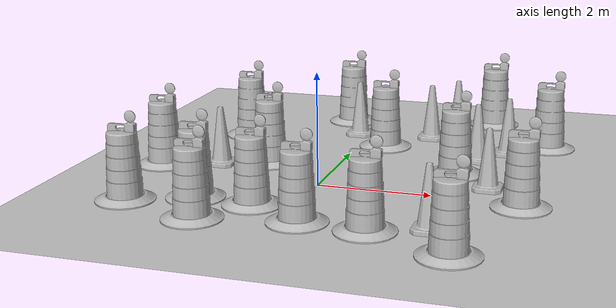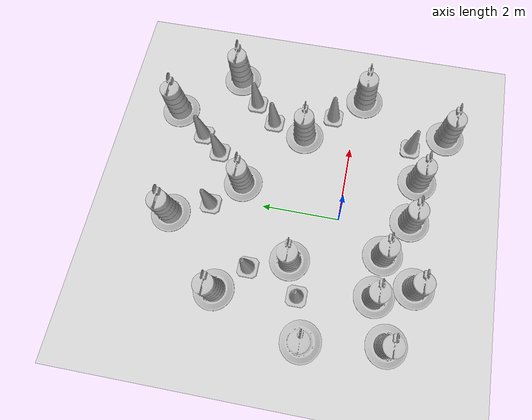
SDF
<sdf version="1.7">
 <world name="default">
  <light name="sun" type="directional">
   <pose>0 0 10 0 -0 0</pose>
   <diffuse>0.8 0.8 0.8 1</diffuse>
   <specular>0.2 0.2 0.2 1</specular>
   <attenuation>
    <range>1000</range>
    <constant>0.9</constant>
    <linear>0.01</linear>
    <quadratic>0.001</quadratic>
   </attenuation>
   <direction>-0.5 0.1 -0.9</direction>
   <spot><inner_angle>0</inner_angle><outer_angle>0</outer_angle><falloff>0</falloff></spot>
  </light>
  <model name="ground_plane">
   <static>1</static>
   <link name="link">
    <collision name="collision">
     <geometry><plane><normal>0 0 1</normal><size>100 100</size></plane></geometry>
     <surface>
      <contact><collide_bitmask>65535</collide_bitmask></contact>
      <friction><ode><mu>100</mu><mu2>50</mu2></ode></friction>
     </surface>
    </collision>
    <visual name="visual">
     <cast_shadows>0</cast_shadows>
     <geometry><plane><normal>0 0 1</normal><size>100 100</size></plane></geometry>
     <material>
      <script><uri>file://media/materials/scripts/gazebo.material</uri><name>Gazebo/Grey</name></script>
     </material>
    </visual>
   </link>
  </model>
  <gravity>0 0 -9.8</gravity>
  <magnetic_field>6e-06 2.3e-05 -4.2e-05</magnetic_field>
  <atmosphere type="adiabatic"/>
  <physics type="ode">
   <max_step_size>0.001</max_step_size>
   <real_time_factor>1</real_time_factor>
   <real_time_update_rate>1000</real_time_update_rate>
  </physics>
  <scene><ambient>0.4 0.4 0.4 1</ambient><background>0.7 0.7 0.7 1</background><shadows>1</shadows></scene>
  <spherical_coordinates>
   <surface_model>EARTH_WGS84</surface_model>
   <latitude_deg>0</latitude_deg>
   <longitude_deg>0</longitude_deg>
   <elevation>0</elevation>
   <heading_deg>0</heading_deg>
  </spherical_coordinates>
  <model name="Construction Barrel">
   <link name="link">
    <inertial>
     <pose>0 0 0.4 0 -0 0</pose>
     <mass>500</mass>
     <inertia><ixx>51.2096</ixx><iyy>51.2096</iyy><izz>25</izz><ixy>0</ixy><ixz>0</ixz><iyz>0</iyz></inertia>
    </inertial>
    <collision name="collision">
     <geometry><mesh><uri>model://construction_barrel/meshes/construction_barrel.dae</uri></mesh></geometry>
    </collision>
    <visual name="visual">
     <geometry><mesh><uri>model://construction_barrel/meshes/construction_barrel.dae</uri></mesh></geometry>
    </visual>
   </link>
   <pose>0.528316 2.64974 -3e-06 -0 -1.2e-05 -4.1e-05</pose>
  </model>
  <model name="Construction Barrel_0">
   <link name="link">
    <inertial>
     <pose>0 0 0.4 0 -0 0</pose>
     <mass>500</mass>
     <inertia><ixx>51.2096</ixx><iyy>51.2096</iyy><izz>25</izz><ixy>0</ixy><ixz>0</ixz><iyz>0</iyz></inertia>
    </inertial>
    <collision name="collision">
     <geometry><mesh><uri>model://construction_barrel/meshes/construction_barrel.dae</uri></mesh></geometry>
    </collision>
    <visual name="visual">
     <geometry><mesh><uri>model://construction_barrel/meshes/construction_barrel.dae</uri></mesh></geometry>
    </visual>
   </link>
   <pose>2.16513 1.29232 0 1e-06 1e-06 -2.8e-05</pose>
  </model>
  <model name="Construction Barrel_1">
   <link name="link">
    <inertial>
     <pose>0 0 0.4 0 -0 0</pose>
     <mass>500</mass>
     <inertia><ixx>51.2096</ixx><iyy>51.2096</iyy><izz>25</izz><ixy>0</ixy><ixz>0</ixz><iyz>0</iyz></inertia>
    </inertial>
    <collision name="collision">
     <geometry><mesh><uri>model://construction_barrel/meshes/construction_barrel.dae</uri></mesh></geometry>
    </collision>
    <visual name="visual">
     <geometry><mesh><uri>model://construction_barrel/meshes/construction_barrel.dae</uri></mesh></geometry>
    </visual>
   </link>
   <pose>-1.41045 -2.10573 -1e-06 3e-06 -2e-06 0.000834</pose>
  </model>
  <model name="Construction Cone">
   <link name="link">
    <collision name="collision">
     <geometry>
      <mesh><scale>10 10 10</scale><uri>model://construction_cone/meshes/construction_cone.dae</uri></mesh>
     </geometry>
    </collision>
    <visual name="visual">
     <geometry>
      <mesh><scale>10 10 10</scale><uri>model://construction_cone/meshes/construction_cone.dae</uri></mesh>
     </geometry>
    </visual>
    <inertial>
     <inertia><ixx>1</ixx><ixy>0</ixy><ixz>0</ixz><iyy>1</iyy><iyz>0</iyz><izz>1</izz></inertia>
     <mass>1</mass>
    </inertial>
   </link>
   <pose>2.42126 2.18894 -0 0 -0 0</pose>
  </model>
  <model name="Construction Cone_0">
   <link name="link">
    <collision name="collision">
     <geometry>
      <mesh><scale>10 10 10</scale><uri>model://construction_cone/meshes/construction_cone.dae</uri></mesh>
     </geometry>
    </collision>
    <visual name="visual">
     <geometry>
      <mesh><scale>10 10 10</scale><uri>model://construction_cone/meshes/construction_cone.dae</uri></mesh>
     </geometry>
    </visual>
    <inertial>
     <inertia><ixx>1</ixx><ixy>0</ixy><ixz>0</ixz><iyy>1</iyy><iyz>0</iyz><izz>1</izz></inertia>
     <mass>1</mass>
    </inertial>
   </link>
   <pose>1.2824 3.46631 -0 0 -0 0</pose>
  </model>
  <model name="Construction Cone_0_clone">
   <link name="link">
    <collision name="collision">
     <geometry>
      <mesh><scale>10 10 10</scale><uri>model://construction_cone/meshes/construction_cone.dae</uri></mesh>
     </geometry>
    </collision>
    <visual name="visual">
     <geometry>
      <mesh><scale>10 10 10</scale><uri>model://construction_cone/meshes/construction_cone.dae</uri></mesh>
     </geometry>
    </visual>
    <inertial>
     <inertia><ixx>1</ixx><ixy>0</ixy><ixz>0</ixz><iyy>1</iyy><iyz>0</iyz><izz>1</izz></inertia>
     <mass>1</mass>
    </inertial>
   </link>
   <pose>2.91374 2.77376 -0 0 -0 0</pose>
  </model>
  <model name="Construction Cone_0_clone_0">
   <link name="link">
    <collision name="collision">
     <geometry>
      <mesh><scale>10 10 10</scale><uri>model://construction_cone/meshes/construction_cone.dae</uri></mesh>
     </geometry>
    </collision>
    <visual name="visual">
     <geometry>
      <mesh><scale>10 10 10</scale><uri>model://construction_cone/meshes/construction_cone.dae</uri></mesh>
     </geometry>
    </visual>
    <inertial>
     <inertia><ixx>1</ixx><ixy>0</ixy><ixz>0</ixz><iyy>1</iyy><iyz>0</iyz><izz>1</izz></inertia>
     <mass>1</mass>
    </inertial>
   </link>
   <pose>1.71332 4.02034 -0 0 -0 0</pose>
  </model>
  <model name="Construction Barrel_1_clone">
   <link name="link">
    <inertial>
     <pose>0 0 0.4 0 -0 0</pose>
     <mass>500</mass>
     <inertia><ixx>51.2096</ixx><iyy>51.2096</iyy><izz>25</izz><ixy>0</ixy><ixz>0</ixz><iyz>0</iyz></inertia>
    </inertial>
    <collision name="collision">
     <geometry><mesh><uri>model://construction_barrel/meshes/construction_barrel.dae</uri></mesh></geometry>
    </collision>
    <visual name="visual">
     <geometry><mesh><uri>model://construction_barrel/meshes/construction_barrel.dae</uri></mesh></geometry>
    </visual>
   </link>
   <pose>-0.733761 -1.24305 -0 0 -0 -4e-05</pose>
  </model>
  <model name="Construction Barrel_1_clone_0">
   <link name="link">
    <inertial>
     <pose>0 0 0.4 0 -0 0</pose>
     <mass>500</mass>
     <inertia><ixx>51.2096</ixx><iyy>51.2096</iyy><izz>25</izz><ixy>0</ixy><ixz>0</ixz><iyz>0</iyz></inertia>
    </inertial>
    <collision name="collision">
     <geometry><mesh><uri>model://construction_barrel/meshes/construction_barrel.dae</uri></mesh></geometry>
    </collision>
    <visual name="visual">
     <geometry><mesh><uri>model://construction_barrel/meshes/construction_barrel.dae</uri></mesh></geometry>
    </visual>
   </link>
   <pose>-1.27241 1.03466 -3e-06 0 -1.2e-05 -3.8e-05</pose>
  </model>
  <model name="Construction Barrel_1_clone_1">
   <link name="link">
    <inertial>
     <pose>0 0 0.4 0 -0 0</pose>
     <mass>500</mass>
     <inertia><ixx>51.2096</ixx><iyy>51.2096</iyy><izz>25</izz><ixy>0</ixy><ixz>0</ixz><iyz>0</iyz></inertia>
    </inertial>
    <collision name="collision">
     <geometry><mesh><uri>model://construction_barrel/meshes/construction_barrel.dae</uri></mesh></geometry>
    </collision>
    <visual name="visual">
     <geometry><mesh><uri>model://construction_barrel/meshes/construction_barrel.dae</uri></mesh></geometry>
    </visual>
   </link>
   <pose>1.37466 -1.88943 -0 0 -0 -3.2e-05</pose>
  </model>
  <model name="Construction Cone_0_clone_3">
   <link name="link">
    <collision name="collision">
     <geometry>
      <mesh><scale>10 10 10</scale><uri>model://construction_cone/meshes/construction_cone.dae</uri></mesh>
     </geometry>
    </collision>
    <visual name="visual">
     <geometry>
      <mesh><scale>10 10 10</scale><uri>model://construction_cone/meshes/construction_cone.dae</uri></mesh>
     </geometry>
    </visual>
    <inertial>
     <inertia><ixx>1</ixx><ixy>0</ixy><ixz>0</ixz><iyy>1</iyy><iyz>0</iyz><izz>1</izz></inertia>
     <mass>1</mass>
    </inertial>
   </link>
   <pose>-2.10338 0.696119 -0 0 -0 0</pose>
  </model>
  <model name="Construction Cone_0_clone_7">
   <link name="link">
    <collision name="collision">
     <geometry>
      <mesh><scale>10 10 10</scale><uri>model://construction_cone/meshes/construction_cone.dae</uri></mesh>
     </geometry>
    </collision>
    <visual name="visual">
     <geometry>
      <mesh><scale>10 10 10</scale><uri>model://construction_cone/meshes/construction_cone.dae</uri></mesh>
     </geometry>
    </visual>
    <inertial>
     <inertia><ixx>1</ixx><ixy>0</ixy><ixz>0</ixz><iyy>1</iyy><iyz>0</iyz><izz>1</izz></inertia>
     <mass>1</mass>
    </inertial>
   </link>
   <pose>2.29814 -1.59698 -0 1e-06 -0 0</pose>
  </model>
  <model name="Construction Cone_0_clone_8">
   <link name="link">
    <collision name="collision">
     <geometry>
      <mesh><scale>10 10 10</scale><uri>model://construction_cone/meshes/construction_cone.dae</uri></mesh>
     </geometry>
    </collision>
    <visual name="visual">
     <geometry>
      <mesh><scale>10 10 10</scale><uri>model://construction_cone/meshes/construction_cone.dae</uri></mesh>
     </geometry>
    </visual>
    <inertial>
     <inertia><ixx>1</ixx><ixy>0</ixy><ixz>0</ixz><iyy>1</iyy><iyz>0</iyz><izz>1</izz></inertia>
     <mass>1</mass>
    </inertial>
   </link>
   <pose>2.86757 0.603778 -1e-05 -0 -0 -0</pose>
  </model>
  <model name="Construction Cone_0_clone_9">
   <link name="link">
    <collision name="collision">
     <geometry>
      <mesh><scale>10 10 10</scale><uri>model://construction_cone/meshes/construction_cone.dae</uri></mesh>
     </geometry>
    </collision>
    <visual name="visual">
     <geometry>
      <mesh><scale>10 10 10</scale><uri>model://construction_cone/meshes/construction_cone.dae</uri></mesh>
     </geometry>
    </visual>
    <inertial>
     <inertia><ixx>1</ixx><ixy>0</ixy><ixz>0</ixz><iyy>1</iyy><iyz>0</iyz><izz>1</izz></inertia>
     <mass>1</mass>
    </inertial>
   </link>
   <pose>-0.179639 3.34319 -8e-06 -5e-06 -0 -0</pose>
  </model>
  <model name="Construction Cone_0_clone_10">
   <link name="link">
    <collision name="collision">
     <geometry>
      <mesh><scale>10 10 10</scale><uri>model://construction_cone/meshes/construction_cone.dae</uri></mesh>
     </geometry>
    </collision>
    <visual name="visual">
     <geometry>
      <mesh><scale>10 10 10</scale><uri>model://construction_cone/meshes/construction_cone.dae</uri></mesh>
     </geometry>
    </visual>
    <inertial>
     <inertia><ixx>1</ixx><ixy>0</ixy><ixz>0</ixz><iyy>1</iyy><iyz>0</iyz><izz>1</izz></inertia>
     <mass>1</mass>
    </inertial>
   </link>
   <pose>-1.62629 2.01965 0 -0 -0 -0</pose>
  </model>
  <model name="Construction Barrel_1_clone_2">
   <link name="link">
    <inertial>
     <pose>0 0 0.4 0 -0 0</pose>
     <mass>500</mass>
     <inertia><ixx>51.2096</ixx><iyy>51.2096</iyy><izz>25</izz><ixy>0</ixy><ixz>0</ixz><iyz>0</iyz></inertia>
    </inertial>
    <collision name="collision">
     <geometry><mesh><uri>model://construction_barrel/meshes/construction_barrel.dae</uri></mesh></geometry>
    </collision>
    <visual name="visual">
     <geometry><mesh><uri>model://construction_barrel/meshes/construction_barrel.dae</uri></mesh></geometry>
    </visual>
   </link>
   <pose>-1.78076 -1.16457 -0 0 -0 -0.000439</pose>
  </model>
  <model name="Construction Barrel_1_clone_clone">
   <link name="link">
    <inertial>
     <pose>0 0 0.4 0 -0 0</pose>
     <mass>500</mass>
     <inertia><ixx>51.2096</ixx><iyy>51.2096</iyy><izz>25</izz><ixy>0</ixy><ixz>0</ixz><iyz>0</iyz></inertia>
    </inertial>
    <collision name="collision">
     <geometry><mesh><uri>model://construction_barrel/meshes/construction_barrel.dae</uri></mesh></geometry>
    </collision>
    <visual name="visual">
     <geometry><mesh><uri>model://construction_barrel/meshes/construction_barrel.dae</uri></mesh></geometry>
    </visual>
   </link>
   <pose>3.53094 -0.170779 -0 0 -0 -3.5e-05</pose>
  </model>
  <model name="Construction Barrel_1_clone_clone_0">
   <link name="link">
    <inertial>
     <pose>0 0 0.4 0 -0 0</pose>
     <mass>500</mass>
     <inertia><ixx>51.2096</ixx><iyy>51.2096</iyy><izz>25</izz><ixy>0</ixy><ixz>0</ixz><iyz>0</iyz></inertia>
    </inertial>
    <collision name="collision">
     <geometry><mesh><uri>model://construction_barrel/meshes/construction_barrel.dae</uri></mesh></geometry>
    </collision>
    <visual name="visual">
     <geometry><mesh><uri>model://construction_barrel/meshes/construction_barrel.dae</uri></mesh></geometry>
    </visual>
   </link>
   <pose>2.79221 -2.51006 -1e-06 -8e-06 -2e-06 -3.7e-05</pose>
  </model>
  <model name="Construction Barrel_1_clone_clone_1">
   <link name="link">
    <inertial>
     <pose>0 0 0.4 0 -0 0</pose>
     <mass>500</mass>
     <inertia><ixx>51.2096</ixx><iyy>51.2096</iyy><izz>25</izz><ixy>0</ixy><ixz>0</ixz><iyz>0</iyz></inertia>
    </inertial>
    <collision name="collision">
     <geometry><mesh><uri>model://construction_barrel/meshes/construction_barrel.dae</uri></mesh></geometry>
    </collision>
    <visual name="visual">
     <geometry><mesh><uri>model://construction_barrel/meshes/construction_barrel.dae</uri></mesh></geometry>
    </visual>
   </link>
   <pose>3.62007 3.37484 -0 0 -0 -3.8e-05</pose>
  </model>
  <model name="Construction Barrel_1_clone_clone_2">
   <link name="link">
    <inertial>
     <pose>0 0 0.4 0 -0 0</pose>
     <mass>500</mass>
     <inertia><ixx>51.2096</ixx><iyy>51.2096</iyy><izz>25</izz><ixy>0</ixy><ixz>0</ixz><iyz>0</iyz></inertia>
    </inertial>
    <collision name="collision">
     <geometry><mesh><uri>model://construction_barrel/meshes/construction_barrel.dae</uri></mesh></geometry>
    </collision>
    <visual name="visual">
     <geometry><mesh><uri>model://construction_barrel/meshes/construction_barrel.dae</uri></mesh></geometry>
    </visual>
   </link>
   <pose>2.34269 4.85227 -3e-06 0 -1.2e-05 -3.8e-05</pose>
  </model>
  <model name="Construction Barrel_1_clone_clone_3">
   <link name="link">
    <inertial>
     <pose>0 0 0.4 0 -0 0</pose>
     <mass>500</mass>
     <inertia><ixx>51.2096</ixx><iyy>51.2096</iyy><izz>25</izz><ixy>0</ixy><ixz>0</ixz><iyz>0</iyz></inertia>
    </inertial>
    <collision name="collision">
     <geometry><mesh><uri>model://construction_barrel/meshes/construction_barrel.dae</uri></mesh></geometry>
    </collision>
    <visual name="visual">
     <geometry><mesh><uri>model://construction_barrel/meshes/construction_barrel.dae</uri></mesh></geometry>
    </visual>
   </link>
   <pose>-2.30654 2.73094 -1e-06 -8e-06 -2e-06 -3.7e-05</pose>
  </model>
  <model name="Construction Barrel_1_clone_clone_4">
   <link name="link">
    <inertial>
     <pose>0 0 0.4 0 -0 0</pose>
     <mass>500</mass>
     <inertia><ixx>51.2096</ixx><iyy>51.2096</iyy><izz>25</izz><ixy>0</ixy><ixz>0</ixz><iyz>0</iyz></inertia>
    </inertial>
    <collision name="collision">
     <geometry><mesh><uri>model://construction_barrel/meshes/construction_barrel.dae</uri></mesh></geometry>
    </collision>
    <visual name="visual">
     <geometry><mesh><uri>model://construction_barrel/meshes/construction_barrel.dae</uri></mesh></geometry>
    </visual>
   </link>
   <pose>-0.598254 4.3161 -1e-06 3e-06 7e-06 -3.3e-05</pose>
  </model>
  <model name="Construction Barrel_1_clone_clone_5">
   <link name="link">
    <inertial>
     <pose>0 0 0.4 0 -0 0</pose>
     <mass>500</mass>
     <inertia><ixx>51.2096</ixx><iyy>51.2096</iyy><izz>25</izz><ixy>0</ixy><ixz>0</ixz><iyz>0</iyz></inertia>
    </inertial>
    <collision name="collision">
     <geometry><mesh><uri>model://construction_barrel/meshes/construction_barrel.dae</uri></mesh></geometry>
    </collision>
    <visual name="visual">
     <geometry><mesh><uri>model://construction_barrel/meshes/construction_barrel.dae</uri></mesh></geometry>
    </visual>
   </link>
   <pose>0.24533 -1.81018 -1e-06 -8e-06 -2e-06 -3.5e-05</pose>
  </model>
  <model name="Construction Barrel_1_clone_2_clone">
   <link name="link">
    <inertial>
     <pose>0 0 0.4 0 -0 0</pose>
     <mass>500</mass>
     <inertia><ixx>51.2096</ixx><iyy>51.2096</iyy><izz>25</izz><ixy>0</ixy><ixz>0</ixz><iyz>0</iyz></inertia>
    </inertial>
    <collision name="collision">
     <geometry><mesh><uri>model://construction_barrel/meshes/construction_barrel.dae</uri></mesh></geometry>
    </collision>
    <visual name="visual">
     <geometry><mesh><uri>model://construction_barrel/meshes/construction_barrel.dae</uri></mesh></geometry>
    </visual>
   </link>
   <pose>-3.12365 0.4057 0 0 0 -0.000442</pose>
  </model>
  <model name="Construction Barrel_1_clone_2_clone_0">
   <link name="link">
    <inertial>
     <pose>0 0 0.4 0 -0 0</pose>
     <mass>500</mass>
     <inertia><ixx>51.2096</ixx><iyy>51.2096</iyy><izz>25</izz><ixy>0</ixy><ixz>0</ixz><iyz>0</iyz></inertia>
    </inertial>
    <collision name="collision">
     <geometry><mesh><uri>model://construction_barrel/meshes/construction_barrel.dae</uri></mesh></geometry>
    </collision>
    <visual name="visual">
     <geometry><mesh><uri>model://construction_barrel/meshes/construction_barrel.dae</uri></mesh></geometry>
    </visual>
   </link>
   <pose>-2.85442 -1.60302 -5e-06 -9e-06 -9e-06 -0.00044</pose>
  </model>
 </world>
</sdf>
